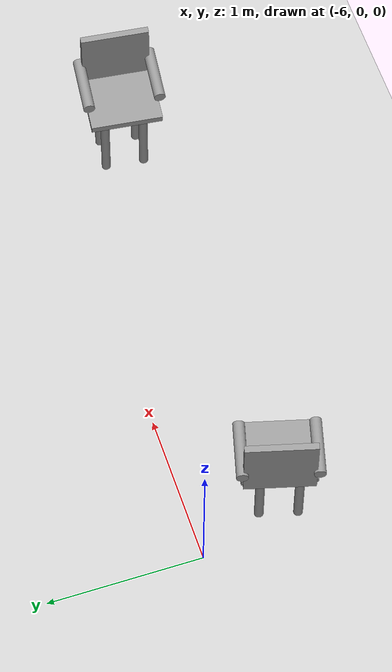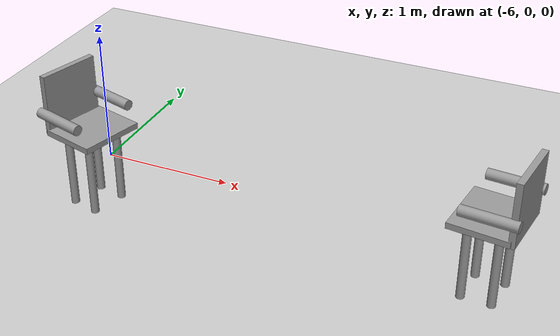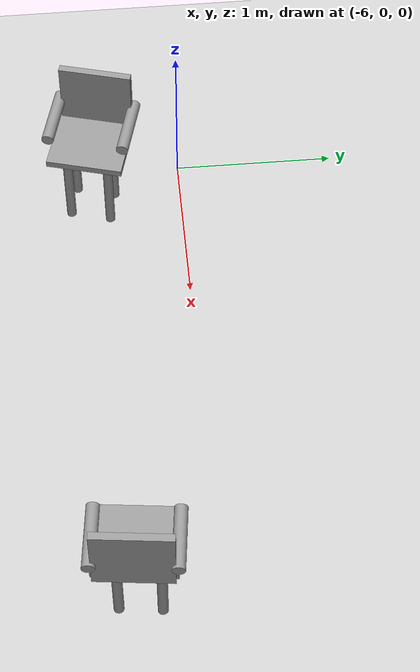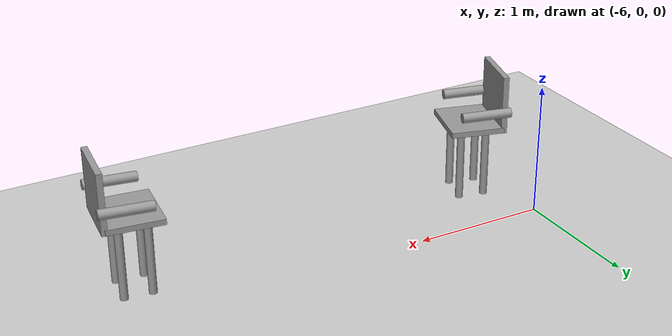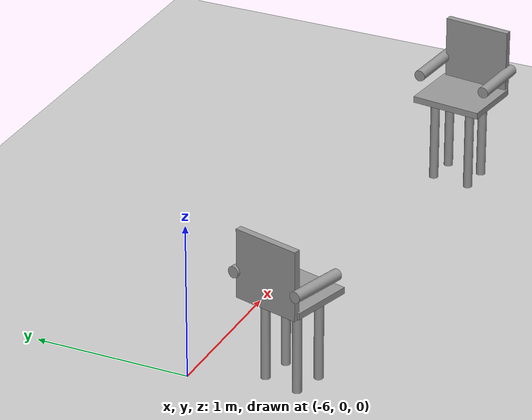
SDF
<sdf version="1.6">
 <world name="default">
  <model name="ground_plane">
   <static>1</static>
   <link name="link">
    <collision name="collision">
     <geometry><plane><normal>0 0 1</normal><size>100 100</size></plane></geometry>
     <surface>
      <contact><collide_bitmask>65535</collide_bitmask></contact>
      <friction><ode><mu>100</mu><mu2>50</mu2></ode></friction>
     </surface>
    </collision>
    <visual name="visual">
     <cast_shadows>0</cast_shadows>
     <geometry><plane><normal>0 0 1</normal><size>100 100</size></plane></geometry>
     <material>
      <script><uri>file://media/materials/scripts/gazebo.material</uri><name>Gazebo/Grey</name></script>
     </material>
    </visual>
   </link>
  </model>
  <model name="chair_clone_4">
   <link name="link_4">
    <inertial>
     <mass>0.00194051</mass>
     <inertia>
      <ixx>5.14044e-05</ixx>
      <ixy>0</ixy>
      <ixz>0</ixz>
      <iyy>5.14044e-05</iyy>
      <iyz>0</iyz>
      <izz>8.34973e-07</izz>
     </inertia>
    </inertial>
    <pose>-0.140129 -0.127166 -0.209129 0 -0 0</pose>
    <visual name="visual">
     <geometry><cylinder><radius>0.0293355</radius><length>0.561516</length></cylinder></geometry>
     <material>
      <lighting>1</lighting>
      <script><uri>file://media/materials/scripts/gazebo.material</uri><name>Gazebo/Grey</name></script>
      <emissive>0 0 0 1</emissive>
     </material>
    </visual>
    <collision name="collision">
     <geometry><cylinder><radius>0.029336</radius><length>0.561516</length></cylinder></geometry>
     <surface>
      <friction>
       <ode><mu>1</mu><mu2>1</mu2><fdir1>0 0 0</fdir1><slip1>0</slip1><slip2>0</slip2></ode>
       <torsional>
        <coefficient>1</coefficient>
        <patch_radius>0</patch_radius>
        <surface_radius>0</surface_radius>
        <use_patch_radius>1</use_patch_radius>
        <ode><slip>0</slip></ode>
       </torsional>
      </friction>
      <bounce><restitution_coefficient>0</restitution_coefficient><threshold>1e+06</threshold></bounce>
      <contact>
       <collide_without_contact>0</collide_without_contact>
       <collide_without_contact_bitmask>1</collide_without_contact_bitmask>
       <collide_bitmask>1</collide_bitmask>
       <ode>
        <soft_cfm>0</soft_cfm>
        <soft_erp>0.2</soft_erp>
        <kp>1e+13</kp>
        <kd>1</kd>
        <max_vel>0.01</max_vel>
        <min_depth>0</min_depth>
       </ode>
       <bullet>
        <split_impulse>1</split_impulse>
        <split_impulse_penetration_threshold>-0.01</split_impulse_penetration_threshold>
        <soft_cfm>0</soft_cfm>
        <soft_erp>0.2</soft_erp>
        <kp>1e+13</kp>
        <kd>1</kd>
       </bullet>
      </contact>
     </surface>
    </collision>
   </link>
   <link name="link_4_clone">
    <inertial>
     <mass>0.00194051</mass>
     <inertia>
      <ixx>5.14044e-05</ixx>
      <ixy>0</ixy>
      <ixz>0</ixz>
      <iyy>5.14044e-05</iyy>
      <iyz>0</iyz>
      <izz>8.34973e-07</izz>
     </inertia>
    </inertial>
    <pose>-0.139565 0.126187 -0.209129 0 -0 0</pose>
    <visual name="visual">
     <geometry><cylinder><radius>0.0293355</radius><length>0.561516</length></cylinder></geometry>
     <material>
      <lighting>1</lighting>
      <script><uri>file://media/materials/scripts/gazebo.material</uri><name>Gazebo/Grey</name></script>
      <shader type="pixel"/>
      <emissive>0 0 0 1</emissive>
     </material>
    </visual>
    <collision name="collision">
     <geometry><cylinder><radius>0.029336</radius><length>0.561516</length></cylinder></geometry>
     <surface>
      <friction>
       <ode><mu>1</mu><mu2>1</mu2><fdir1>0 0 0</fdir1><slip1>0</slip1><slip2>0</slip2></ode>
       <torsional>
        <coefficient>1</coefficient>
        <patch_radius>0</patch_radius>
        <surface_radius>0</surface_radius>
        <use_patch_radius>1</use_patch_radius>
        <ode><slip>0</slip></ode>
       </torsional>
      </friction>
      <bounce><restitution_coefficient>0</restitution_coefficient><threshold>1e+06</threshold></bounce>
      <contact>
       <collide_without_contact>0</collide_without_contact>
       <collide_without_contact_bitmask>1</collide_without_contact_bitmask>
       <collide_bitmask>1</collide_bitmask>
       <ode>
        <soft_cfm>0</soft_cfm>
        <soft_erp>0.2</soft_erp>
        <kp>1e+13</kp>
        <kd>1</kd>
        <max_vel>0.01</max_vel>
        <min_depth>0</min_depth>
       </ode>
       <bullet>
        <split_impulse>1</split_impulse>
        <split_impulse_penetration_threshold>-0.01</split_impulse_penetration_threshold>
        <soft_cfm>0</soft_cfm>
        <soft_erp>0.2</soft_erp>
        <kp>1e+13</kp>
        <kd>1</kd>
       </bullet>
      </contact>
     </surface>
    </collision>
   </link>
   <link name="link_4_clone_0">
    <inertial>
     <mass>0.00194051</mass>
     <inertia>
      <ixx>5.14044e-05</ixx>
      <ixy>0</ixy>
      <ixz>0</ixz>
      <iyy>5.14044e-05</iyy>
      <iyz>0</iyz>
      <izz>8.34973e-07</izz>
     </inertia>
    </inertial>
    <pose>0.062929 0.13105 -0.209129 0 -0 0</pose>
    <visual name="visual">
     <geometry><cylinder><radius>0.0293355</radius><length>0.561516</length></cylinder></geometry>
     <material>
      <lighting>1</lighting>
      <script><uri>file://media/materials/scripts/gazebo.material</uri><name>Gazebo/Grey</name></script>
      <shader type="pixel"/>
      <emissive>0 0 0 1</emissive>
     </material>
    </visual>
    <collision name="collision">
     <geometry><cylinder><radius>0.029336</radius><length>0.561516</length></cylinder></geometry>
     <surface>
      <friction>
       <ode><mu>1</mu><mu2>1</mu2><fdir1>0 0 0</fdir1><slip1>0</slip1><slip2>0</slip2></ode>
       <torsional>
        <coefficient>1</coefficient>
        <patch_radius>0</patch_radius>
        <surface_radius>0</surface_radius>
        <use_patch_radius>1</use_patch_radius>
        <ode><slip>0</slip></ode>
       </torsional>
      </friction>
      <bounce><restitution_coefficient>0</restitution_coefficient><threshold>1e+06</threshold></bounce>
      <contact>
       <collide_without_contact>0</collide_without_contact>
       <collide_without_contact_bitmask>1</collide_without_contact_bitmask>
       <collide_bitmask>1</collide_bitmask>
       <ode>
        <soft_cfm>0</soft_cfm>
        <soft_erp>0.2</soft_erp>
        <kp>1e+13</kp>
        <kd>1</kd>
        <max_vel>0.01</max_vel>
        <min_depth>0</min_depth>
       </ode>
       <bullet>
        <split_impulse>1</split_impulse>
        <split_impulse_penetration_threshold>-0.01</split_impulse_penetration_threshold>
        <soft_cfm>0</soft_cfm>
        <soft_erp>0.2</soft_erp>
        <kp>1e+13</kp>
        <kd>1</kd>
       </bullet>
      </contact>
     </surface>
    </collision>
   </link>
   <link name="link_4_clone_1">
    <inertial>
     <mass>0.00194051</mass>
     <inertia>
      <ixx>5.14044e-05</ixx>
      <ixy>0</ixy>
      <ixz>0</ixz>
      <iyy>5.14044e-05</iyy>
      <iyz>0</iyz>
      <izz>8.34973e-07</izz>
     </inertia>
    </inertial>
    <pose>0.061641 -0.111934 -0.209129 0 -0 0</pose>
    <visual name="visual">
     <geometry><cylinder><radius>0.0293355</radius><length>0.561516</length></cylinder></geometry>
     <material>
      <lighting>1</lighting>
      <script><uri>file://media/materials/scripts/gazebo.material</uri><name>Gazebo/Grey</name></script>
      <shader type="pixel"/>
      <emissive>0 0 0 1</emissive>
     </material>
    </visual>
    <collision name="collision">
     <geometry><cylinder><radius>0.029336</radius><length>0.561516</length></cylinder></geometry>
     <surface>
      <friction>
       <ode><mu>1</mu><mu2>1</mu2><fdir1>0 0 0</fdir1><slip1>0</slip1><slip2>0</slip2></ode>
       <torsional>
        <coefficient>1</coefficient>
        <patch_radius>0</patch_radius>
        <surface_radius>0</surface_radius>
        <use_patch_radius>1</use_patch_radius>
        <ode><slip>0</slip></ode>
       </torsional>
      </friction>
      <bounce><restitution_coefficient>0</restitution_coefficient><threshold>1e+06</threshold></bounce>
      <contact>
       <collide_without_contact>0</collide_without_contact>
       <collide_without_contact_bitmask>1</collide_without_contact_bitmask>
       <collide_bitmask>1</collide_bitmask>
       <ode>
        <soft_cfm>0</soft_cfm>
        <soft_erp>0.2</soft_erp>
        <kp>1e+13</kp>
        <kd>1</kd>
        <max_vel>0.01</max_vel>
        <min_depth>0</min_depth>
       </ode>
       <bullet>
        <split_impulse>1</split_impulse>
        <split_impulse_penetration_threshold>-0.01</split_impulse_penetration_threshold>
        <soft_cfm>0</soft_cfm>
        <soft_erp>0.2</soft_erp>
        <kp>1e+13</kp>
        <kd>1</kd>
       </bullet>
      </contact>
     </surface>
    </collision>
   </link>
   <link name="link_5">
    <inertial>
     <mass>0.00816884</mass>
     <inertia>
      <ixx>0.00015002</ixx>
      <ixy>0</ixy>
      <ixz>0</ixz>
      <iyy>0.000115328</iyy>
      <iyz>0</iyz>
      <izz>0.000262862</izz>
     </inertia>
    </inertial>
    <pose>-0.041662 -0.005028 0.089077 0 -0 0</pose>
    <visual name="visual">
     <geometry><box><size>0.409378 0.467496 0.042729</size></box></geometry>
     <material>
      <lighting>1</lighting>
      <script><uri>file://media/materials/scripts/gazebo.material</uri><name>Gazebo/Grey</name></script>
      <emissive>0 0 0 1</emissive>
     </material>
    </visual>
    <collision name="collision">
     <geometry><box><size>0.409378 0.467496 0.042729</size></box></geometry>
     <surface>
      <friction>
       <ode><mu>1</mu><mu2>1</mu2><fdir1>0 0 0</fdir1><slip1>0</slip1><slip2>0</slip2></ode>
       <torsional>
        <coefficient>1</coefficient>
        <patch_radius>0</patch_radius>
        <surface_radius>0</surface_radius>
        <use_patch_radius>1</use_patch_radius>
        <ode><slip>0</slip></ode>
       </torsional>
      </friction>
      <bounce><restitution_coefficient>0</restitution_coefficient><threshold>1e+06</threshold></bounce>
      <contact>
       <collide_without_contact>0</collide_without_contact>
       <collide_without_contact_bitmask>1</collide_without_contact_bitmask>
       <collide_bitmask>1</collide_bitmask>
       <ode>
        <soft_cfm>0</soft_cfm>
        <soft_erp>0.2</soft_erp>
        <kp>1e+13</kp>
        <kd>1</kd>
        <max_vel>0.01</max_vel>
        <min_depth>0</min_depth>
       </ode>
       <bullet>
        <split_impulse>1</split_impulse>
        <split_impulse_penetration_threshold>-0.01</split_impulse_penetration_threshold>
        <soft_cfm>0</soft_cfm>
        <soft_erp>0.2</soft_erp>
        <kp>1e+13</kp>
        <kd>1</kd>
       </bullet>
      </contact>
     </surface>
    </collision>
   </link>
   <link name="link_6">
    <inertial>
     <mass>0.00855687</mass>
     <inertia>
      <ixx>0.000285159</ixx>
      <ixy>0</ixy>
      <ixz>0</ixz>
      <iyy>0.000146983</iyy>
      <iyz>0</iyz>
      <izz>0.000140925</izz>
     </inertia>
    </inertial>
    <pose>0.165697 -0.006458 0.287866 0 -0 0</pose>
    <visual name="visual">
     <geometry><box><size>0.0439 0.442383 0.451884</size></box></geometry>
     <material>
      <lighting>1</lighting>
      <script><uri>file://media/materials/scripts/gazebo.material</uri><name>Gazebo/Grey</name></script>
      <emissive>0 0 0 1</emissive>
     </material>
    </visual>
    <collision name="collision">
     <geometry><box><size>0.0439 0.442383 0.451884</size></box></geometry>
     <surface>
      <friction>
       <ode><mu>1</mu><mu2>1</mu2><fdir1>0 0 0</fdir1><slip1>0</slip1><slip2>0</slip2></ode>
       <torsional>
        <coefficient>1</coefficient>
        <patch_radius>0</patch_radius>
        <surface_radius>0</surface_radius>
        <use_patch_radius>1</use_patch_radius>
        <ode><slip>0</slip></ode>
       </torsional>
      </friction>
      <bounce><restitution_coefficient>0</restitution_coefficient><threshold>1e+06</threshold></bounce>
      <contact>
       <collide_without_contact>0</collide_without_contact>
       <collide_without_contact_bitmask>1</collide_without_contact_bitmask>
       <collide_bitmask>1</collide_bitmask>
       <ode>
        <soft_cfm>0</soft_cfm>
        <soft_erp>0.2</soft_erp>
        <kp>1e+13</kp>
        <kd>1</kd>
        <max_vel>0.01</max_vel>
        <min_depth>0</min_depth>
       </ode>
       <bullet>
        <split_impulse>1</split_impulse>
        <split_impulse_penetration_threshold>-0.01</split_impulse_penetration_threshold>
        <soft_cfm>0</soft_cfm>
        <soft_erp>0.2</soft_erp>
        <kp>1e+13</kp>
        <kd>1</kd>
       </bullet>
      </contact>
     </surface>
    </collision>
   </link>
   <link name="link_7">
    <inertial>
     <mass>0.00209129</mass>
     <inertia>
      <ixx>2.57536e-05</ixx>
      <ixy>0</ixy>
      <ixz>0</ixz>
      <iyy>2.57536e-05</iyy>
      <iyz>0</iyz>
      <izz>1.44551e-06</izz>
     </inertia>
    </inertial>
    <pose>0.0147 0.228665 0.230372 0 1.55081 0</pose>
    <visual name="visual">
     <geometry><cylinder><radius>0.0371808</radius><length>0.378984</length></cylinder></geometry>
     <material>
      <lighting>1</lighting>
      <script><uri>file://media/materials/scripts/gazebo.material</uri><name>Gazebo/Grey</name></script>
      <emissive>0 0 0 1</emissive>
     </material>
    </visual>
    <collision name="collision">
     <geometry><cylinder><radius>0.037181</radius><length>0.378984</length></cylinder></geometry>
     <surface>
      <friction>
       <ode><mu>1</mu><mu2>1</mu2><fdir1>0 0 0</fdir1><slip1>0</slip1><slip2>0</slip2></ode>
       <torsional>
        <coefficient>1</coefficient>
        <patch_radius>0</patch_radius>
        <surface_radius>0</surface_radius>
        <use_patch_radius>1</use_patch_radius>
        <ode><slip>0</slip></ode>
       </torsional>
      </friction>
      <bounce><restitution_coefficient>0</restitution_coefficient><threshold>1e+06</threshold></bounce>
      <contact>
       <collide_without_contact>0</collide_without_contact>
       <collide_without_contact_bitmask>1</collide_without_contact_bitmask>
       <collide_bitmask>1</collide_bitmask>
       <ode>
        <soft_cfm>0</soft_cfm>
        <soft_erp>0.2</soft_erp>
        <kp>1e+13</kp>
        <kd>1</kd>
        <max_vel>0.01</max_vel>
        <min_depth>0</min_depth>
       </ode>
       <bullet>
        <split_impulse>1</split_impulse>
        <split_impulse_penetration_threshold>-0.01</split_impulse_penetration_threshold>
        <soft_cfm>0</soft_cfm>
        <soft_erp>0.2</soft_erp>
        <kp>1e+13</kp>
        <kd>1</kd>
       </bullet>
      </contact>
     </surface>
    </collision>
   </link>
   <link name="link_7_clone">
    <inertial>
     <mass>0.00209129</mass>
     <inertia>
      <ixx>2.57536e-05</ixx>
      <ixy>0</ixy>
      <ixz>0</ixz>
      <iyy>2.57536e-05</iyy>
      <iyz>0</iyz>
      <izz>1.44551e-06</izz>
     </inertia>
    </inertial>
    <pose>0.01639 -0.235319 0.229201 0 1.55081 0</pose>
    <visual name="visual">
     <geometry><cylinder><radius>0.0371808</radius><length>0.378984</length></cylinder></geometry>
     <material>
      <lighting>1</lighting>
      <script><uri>file://media/materials/scripts/gazebo.material</uri><name>Gazebo/Grey</name></script>
      <shader type="pixel"/>
      <emissive>0 0 0 1</emissive>
     </material>
    </visual>
    <collision name="collision">
     <geometry><cylinder><radius>0.037181</radius><length>0.378984</length></cylinder></geometry>
     <surface>
      <friction>
       <ode><mu>1</mu><mu2>1</mu2><fdir1>0 0 0</fdir1><slip1>0</slip1><slip2>0</slip2></ode>
       <torsional>
        <coefficient>1</coefficient>
        <patch_radius>0</patch_radius>
        <surface_radius>0</surface_radius>
        <use_patch_radius>1</use_patch_radius>
        <ode><slip>0</slip></ode>
       </torsional>
      </friction>
      <bounce><restitution_coefficient>0</restitution_coefficient><threshold>1e+06</threshold></bounce>
      <contact>
       <collide_without_contact>0</collide_without_contact>
       <collide_without_contact_bitmask>1</collide_without_contact_bitmask>
       <collide_bitmask>1</collide_bitmask>
       <ode>
        <soft_cfm>0</soft_cfm>
        <soft_erp>0.2</soft_erp>
        <kp>1e+13</kp>
        <kd>1</kd>
        <max_vel>0.01</max_vel>
        <min_depth>0</min_depth>
       </ode>
       <bullet>
        <split_impulse>1</split_impulse>
        <split_impulse_penetration_threshold>-0.01</split_impulse_penetration_threshold>
        <soft_cfm>0</soft_cfm>
        <soft_erp>0.2</soft_erp>
        <kp>1e+13</kp>
        <kd>1</kd>
       </bullet>
      </contact>
     </surface>
    </collision>
   </link>
   <joint name="link_5_JOINT_2" type="fixed">
    <parent>link_5</parent>
    <child>link_4_clone_1</child>
    <physics>
     <ode><limit><cfm>0</cfm><erp>0.2</erp></limit><suspension><cfm>0</cfm><erp>0.2</erp></suspension></ode>
    </physics>
   </joint>
   <joint name="link_5_JOINT_3" type="fixed">
    <parent>link_5</parent>
    <child>link_4</child>
    <physics>
     <ode><limit><cfm>0</cfm><erp>0.2</erp></limit><suspension><cfm>0</cfm><erp>0.2</erp></suspension></ode>
    </physics>
   </joint>
   <joint name="link_5_JOINT_4" type="fixed">
    <parent>link_5</parent>
    <child>link_4_clone_0</child>
    <physics>
     <ode><limit><cfm>0</cfm><erp>0.2</erp></limit><suspension><cfm>0</cfm><erp>0.2</erp></suspension></ode>
    </physics>
   </joint>
   <joint name="link_5_JOINT_5" type="fixed">
    <parent>link_5</parent>
    <child>link_4_clone</child>
    <physics>
     <ode><limit><cfm>0</cfm><erp>0.2</erp></limit><suspension><cfm>0</cfm><erp>0.2</erp></suspension></ode>
    </physics>
   </joint>
   <joint name="link_5_JOINT_6" type="fixed">
    <parent>link_5</parent>
    <child>link_6</child>
    <physics>
     <ode><limit><cfm>0</cfm><erp>0.2</erp></limit><suspension><cfm>0</cfm><erp>0.2</erp></suspension></ode>
    </physics>
   </joint>
   <joint name="link_5_JOINT_7" type="fixed">
    <parent>link_5</parent>
    <child>link_7</child>
    <physics>
     <ode><limit><cfm>0</cfm><erp>0.2</erp></limit><suspension><cfm>0</cfm><erp>0.2</erp></suspension></ode>
    </physics>
   </joint>
   <joint name="link_5_JOINT_8" type="fixed">
    <parent>link_5</parent>
    <child>link_7_clone</child>
    <physics>
     <ode><limit><cfm>0</cfm><erp>0.2</erp></limit><suspension><cfm>0</cfm><erp>0.2</erp></suspension></ode>
    </physics>
   </joint>
   <static>0</static>
   <pose>-2.90655 -0.455059 0.489878 -1e-06 3.2e-05 -0.117018</pose>
  </model>
  <model name="chair_clone_0_clone_4">
   <link name="link_4">
    <inertial>
     <mass>0.00194051</mass>
     <inertia>
      <ixx>5.14044e-05</ixx>
      <ixy>0</ixy>
      <ixz>0</ixz>
      <iyy>5.14044e-05</iyy>
      <iyz>0</iyz>
      <izz>8.34973e-07</izz>
     </inertia>
    </inertial>
    <pose>-0.140129 -0.127166 -0.209129 0 -0 0</pose>
    <visual name="visual">
     <geometry><cylinder><radius>0.0293355</radius><length>0.561516</length></cylinder></geometry>
     <material>
      <lighting>1</lighting>
      <script><uri>file://media/materials/scripts/gazebo.material</uri><name>Gazebo/Grey</name></script>
      <emissive>0 0 0 1</emissive>
     </material>
    </visual>
    <collision name="collision">
     <geometry><cylinder><radius>0.029336</radius><length>0.561516</length></cylinder></geometry>
     <surface>
      <friction>
       <ode><mu>1</mu><mu2>1</mu2><fdir1>0 0 0</fdir1><slip1>0</slip1><slip2>0</slip2></ode>
       <torsional>
        <coefficient>1</coefficient>
        <patch_radius>0</patch_radius>
        <surface_radius>0</surface_radius>
        <use_patch_radius>1</use_patch_radius>
        <ode><slip>0</slip></ode>
       </torsional>
      </friction>
      <bounce><restitution_coefficient>0</restitution_coefficient><threshold>1e+06</threshold></bounce>
      <contact>
       <collide_without_contact>0</collide_without_contact>
       <collide_without_contact_bitmask>1</collide_without_contact_bitmask>
       <collide_bitmask>1</collide_bitmask>
       <ode>
        <soft_cfm>0</soft_cfm>
        <soft_erp>0.2</soft_erp>
        <kp>1e+13</kp>
        <kd>1</kd>
        <max_vel>0.01</max_vel>
        <min_depth>0</min_depth>
       </ode>
       <bullet>
        <split_impulse>1</split_impulse>
        <split_impulse_penetration_threshold>-0.01</split_impulse_penetration_threshold>
        <soft_cfm>0</soft_cfm>
        <soft_erp>0.2</soft_erp>
        <kp>1e+13</kp>
        <kd>1</kd>
       </bullet>
      </contact>
     </surface>
    </collision>
   </link>
   <link name="link_4_clone">
    <inertial>
     <mass>0.00194051</mass>
     <inertia>
      <ixx>5.14044e-05</ixx>
      <ixy>0</ixy>
      <ixz>0</ixz>
      <iyy>5.14044e-05</iyy>
      <iyz>0</iyz>
      <izz>8.34973e-07</izz>
     </inertia>
    </inertial>
    <pose>-0.139565 0.126187 -0.209129 0 -0 0</pose>
    <visual name="visual">
     <geometry><cylinder><radius>0.0293355</radius><length>0.561516</length></cylinder></geometry>
     <material>
      <lighting>1</lighting>
      <script><uri>file://media/materials/scripts/gazebo.material</uri><name>Gazebo/Grey</name></script>
      <shader type="pixel"/>
      <emissive>0 0 0 1</emissive>
     </material>
    </visual>
    <collision name="collision">
     <geometry><cylinder><radius>0.029336</radius><length>0.561516</length></cylinder></geometry>
     <surface>
      <friction>
       <ode><mu>1</mu><mu2>1</mu2><fdir1>0 0 0</fdir1><slip1>0</slip1><slip2>0</slip2></ode>
       <torsional>
        <coefficient>1</coefficient>
        <patch_radius>0</patch_radius>
        <surface_radius>0</surface_radius>
        <use_patch_radius>1</use_patch_radius>
        <ode><slip>0</slip></ode>
       </torsional>
      </friction>
      <bounce><restitution_coefficient>0</restitution_coefficient><threshold>1e+06</threshold></bounce>
      <contact>
       <collide_without_contact>0</collide_without_contact>
       <collide_without_contact_bitmask>1</collide_without_contact_bitmask>
       <collide_bitmask>1</collide_bitmask>
       <ode>
        <soft_cfm>0</soft_cfm>
        <soft_erp>0.2</soft_erp>
        <kp>1e+13</kp>
        <kd>1</kd>
        <max_vel>0.01</max_vel>
        <min_depth>0</min_depth>
       </ode>
       <bullet>
        <split_impulse>1</split_impulse>
        <split_impulse_penetration_threshold>-0.01</split_impulse_penetration_threshold>
        <soft_cfm>0</soft_cfm>
        <soft_erp>0.2</soft_erp>
        <kp>1e+13</kp>
        <kd>1</kd>
       </bullet>
      </contact>
     </surface>
    </collision>
   </link>
   <link name="link_4_clone_0">
    <inertial>
     <mass>0.00194051</mass>
     <inertia>
      <ixx>5.14044e-05</ixx>
      <ixy>0</ixy>
      <ixz>0</ixz>
      <iyy>5.14044e-05</iyy>
      <iyz>0</iyz>
      <izz>8.34973e-07</izz>
     </inertia>
    </inertial>
    <pose>0.062929 0.13105 -0.209129 0 -0 0</pose>
    <visual name="visual">
     <geometry><cylinder><radius>0.0293355</radius><length>0.561516</length></cylinder></geometry>
     <material>
      <lighting>1</lighting>
      <script><uri>file://media/materials/scripts/gazebo.material</uri><name>Gazebo/Grey</name></script>
      <shader type="pixel"/>
      <emissive>0 0 0 1</emissive>
     </material>
    </visual>
    <collision name="collision">
     <geometry><cylinder><radius>0.029336</radius><length>0.561516</length></cylinder></geometry>
     <surface>
      <friction>
       <ode><mu>1</mu><mu2>1</mu2><fdir1>0 0 0</fdir1><slip1>0</slip1><slip2>0</slip2></ode>
       <torsional>
        <coefficient>1</coefficient>
        <patch_radius>0</patch_radius>
        <surface_radius>0</surface_radius>
        <use_patch_radius>1</use_patch_radius>
        <ode><slip>0</slip></ode>
       </torsional>
      </friction>
      <bounce><restitution_coefficient>0</restitution_coefficient><threshold>1e+06</threshold></bounce>
      <contact>
       <collide_without_contact>0</collide_without_contact>
       <collide_without_contact_bitmask>1</collide_without_contact_bitmask>
       <collide_bitmask>1</collide_bitmask>
       <ode>
        <soft_cfm>0</soft_cfm>
        <soft_erp>0.2</soft_erp>
        <kp>1e+13</kp>
        <kd>1</kd>
        <max_vel>0.01</max_vel>
        <min_depth>0</min_depth>
       </ode>
       <bullet>
        <split_impulse>1</split_impulse>
        <split_impulse_penetration_threshold>-0.01</split_impulse_penetration_threshold>
        <soft_cfm>0</soft_cfm>
        <soft_erp>0.2</soft_erp>
        <kp>1e+13</kp>
        <kd>1</kd>
       </bullet>
      </contact>
     </surface>
    </collision>
   </link>
   <link name="link_4_clone_1">
    <inertial>
     <mass>0.00194051</mass>
     <inertia>
      <ixx>5.14044e-05</ixx>
      <ixy>0</ixy>
      <ixz>0</ixz>
      <iyy>5.14044e-05</iyy>
      <iyz>0</iyz>
      <izz>8.34973e-07</izz>
     </inertia>
    </inertial>
    <pose>0.061641 -0.111934 -0.209129 0 -0 0</pose>
    <visual name="visual">
     <geometry><cylinder><radius>0.0293355</radius><length>0.561516</length></cylinder></geometry>
     <material>
      <lighting>1</lighting>
      <script><uri>file://media/materials/scripts/gazebo.material</uri><name>Gazebo/Grey</name></script>
      <shader type="pixel"/>
      <emissive>0 0 0 1</emissive>
     </material>
    </visual>
    <collision name="collision">
     <geometry><cylinder><radius>0.029336</radius><length>0.561516</length></cylinder></geometry>
     <surface>
      <friction>
       <ode><mu>1</mu><mu2>1</mu2><fdir1>0 0 0</fdir1><slip1>0</slip1><slip2>0</slip2></ode>
       <torsional>
        <coefficient>1</coefficient>
        <patch_radius>0</patch_radius>
        <surface_radius>0</surface_radius>
        <use_patch_radius>1</use_patch_radius>
        <ode><slip>0</slip></ode>
       </torsional>
      </friction>
      <bounce><restitution_coefficient>0</restitution_coefficient><threshold>1e+06</threshold></bounce>
      <contact>
       <collide_without_contact>0</collide_without_contact>
       <collide_without_contact_bitmask>1</collide_without_contact_bitmask>
       <collide_bitmask>1</collide_bitmask>
       <ode>
        <soft_cfm>0</soft_cfm>
        <soft_erp>0.2</soft_erp>
        <kp>1e+13</kp>
        <kd>1</kd>
        <max_vel>0.01</max_vel>
        <min_depth>0</min_depth>
       </ode>
       <bullet>
        <split_impulse>1</split_impulse>
        <split_impulse_penetration_threshold>-0.01</split_impulse_penetration_threshold>
        <soft_cfm>0</soft_cfm>
        <soft_erp>0.2</soft_erp>
        <kp>1e+13</kp>
        <kd>1</kd>
       </bullet>
      </contact>
     </surface>
    </collision>
   </link>
   <link name="link_5">
    <inertial>
     <mass>0.00816884</mass>
     <inertia>
      <ixx>0.00015002</ixx>
      <ixy>0</ixy>
      <ixz>0</ixz>
      <iyy>0.000115328</iyy>
      <iyz>0</iyz>
      <izz>0.000262862</izz>
     </inertia>
    </inertial>
    <pose>-0.041662 -0.005028 0.089077 0 -0 0</pose>
    <visual name="visual">
     <geometry><box><size>0.409378 0.467496 0.042729</size></box></geometry>
     <material>
      <lighting>1</lighting>
      <script><uri>file://media/materials/scripts/gazebo.material</uri><name>Gazebo/Grey</name></script>
      <emissive>0 0 0 1</emissive>
     </material>
    </visual>
    <collision name="collision">
     <geometry><box><size>0.409378 0.467496 0.042729</size></box></geometry>
     <surface>
      <friction>
       <ode><mu>1</mu><mu2>1</mu2><fdir1>0 0 0</fdir1><slip1>0</slip1><slip2>0</slip2></ode>
       <torsional>
        <coefficient>1</coefficient>
        <patch_radius>0</patch_radius>
        <surface_radius>0</surface_radius>
        <use_patch_radius>1</use_patch_radius>
        <ode><slip>0</slip></ode>
       </torsional>
      </friction>
      <bounce><restitution_coefficient>0</restitution_coefficient><threshold>1e+06</threshold></bounce>
      <contact>
       <collide_without_contact>0</collide_without_contact>
       <collide_without_contact_bitmask>1</collide_without_contact_bitmask>
       <collide_bitmask>1</collide_bitmask>
       <ode>
        <soft_cfm>0</soft_cfm>
        <soft_erp>0.2</soft_erp>
        <kp>1e+13</kp>
        <kd>1</kd>
        <max_vel>0.01</max_vel>
        <min_depth>0</min_depth>
       </ode>
       <bullet>
        <split_impulse>1</split_impulse>
        <split_impulse_penetration_threshold>-0.01</split_impulse_penetration_threshold>
        <soft_cfm>0</soft_cfm>
        <soft_erp>0.2</soft_erp>
        <kp>1e+13</kp>
        <kd>1</kd>
       </bullet>
      </contact>
     </surface>
    </collision>
   </link>
   <link name="link_6">
    <inertial>
     <mass>0.00855687</mass>
     <inertia>
      <ixx>0.000285159</ixx>
      <ixy>0</ixy>
      <ixz>0</ixz>
      <iyy>0.000146983</iyy>
      <iyz>0</iyz>
      <izz>0.000140925</izz>
     </inertia>
    </inertial>
    <pose>0.165697 -0.006458 0.287866 0 -0 0</pose>
    <visual name="visual">
     <geometry><box><size>0.0439 0.442383 0.451884</size></box></geometry>
     <material>
      <lighting>1</lighting>
      <script><uri>file://media/materials/scripts/gazebo.material</uri><name>Gazebo/Grey</name></script>
      <emissive>0 0 0 1</emissive>
     </material>
    </visual>
    <collision name="collision">
     <geometry><box><size>0.0439 0.442383 0.451884</size></box></geometry>
     <surface>
      <friction>
       <ode><mu>1</mu><mu2>1</mu2><fdir1>0 0 0</fdir1><slip1>0</slip1><slip2>0</slip2></ode>
       <torsional>
        <coefficient>1</coefficient>
        <patch_radius>0</patch_radius>
        <surface_radius>0</surface_radius>
        <use_patch_radius>1</use_patch_radius>
        <ode><slip>0</slip></ode>
       </torsional>
      </friction>
      <bounce><restitution_coefficient>0</restitution_coefficient><threshold>1e+06</threshold></bounce>
      <contact>
       <collide_without_contact>0</collide_without_contact>
       <collide_without_contact_bitmask>1</collide_without_contact_bitmask>
       <collide_bitmask>1</collide_bitmask>
       <ode>
        <soft_cfm>0</soft_cfm>
        <soft_erp>0.2</soft_erp>
        <kp>1e+13</kp>
        <kd>1</kd>
        <max_vel>0.01</max_vel>
        <min_depth>0</min_depth>
       </ode>
       <bullet>
        <split_impulse>1</split_impulse>
        <split_impulse_penetration_threshold>-0.01</split_impulse_penetration_threshold>
        <soft_cfm>0</soft_cfm>
        <soft_erp>0.2</soft_erp>
        <kp>1e+13</kp>
        <kd>1</kd>
       </bullet>
      </contact>
     </surface>
    </collision>
   </link>
   <link name="link_7">
    <inertial>
     <mass>0.00209129</mass>
     <inertia>
      <ixx>2.57536e-05</ixx>
      <ixy>0</ixy>
      <ixz>0</ixz>
      <iyy>2.57536e-05</iyy>
      <iyz>0</iyz>
      <izz>1.44551e-06</izz>
     </inertia>
    </inertial>
    <pose>0.0147 0.228665 0.230372 0 1.55081 0</pose>
    <visual name="visual">
     <geometry><cylinder><radius>0.0371808</radius><length>0.378984</length></cylinder></geometry>
     <material>
      <lighting>1</lighting>
      <script><uri>file://media/materials/scripts/gazebo.material</uri><name>Gazebo/Grey</name></script>
      <emissive>0 0 0 1</emissive>
     </material>
    </visual>
    <collision name="collision">
     <geometry><cylinder><radius>0.037181</radius><length>0.378984</length></cylinder></geometry>
     <surface>
      <friction>
       <ode><mu>1</mu><mu2>1</mu2><fdir1>0 0 0</fdir1><slip1>0</slip1><slip2>0</slip2></ode>
       <torsional>
        <coefficient>1</coefficient>
        <patch_radius>0</patch_radius>
        <surface_radius>0</surface_radius>
        <use_patch_radius>1</use_patch_radius>
        <ode><slip>0</slip></ode>
       </torsional>
      </friction>
      <bounce><restitution_coefficient>0</restitution_coefficient><threshold>1e+06</threshold></bounce>
      <contact>
       <collide_without_contact>0</collide_without_contact>
       <collide_without_contact_bitmask>1</collide_without_contact_bitmask>
       <collide_bitmask>1</collide_bitmask>
       <ode>
        <soft_cfm>0</soft_cfm>
        <soft_erp>0.2</soft_erp>
        <kp>1e+13</kp>
        <kd>1</kd>
        <max_vel>0.01</max_vel>
        <min_depth>0</min_depth>
       </ode>
       <bullet>
        <split_impulse>1</split_impulse>
        <split_impulse_penetration_threshold>-0.01</split_impulse_penetration_threshold>
        <soft_cfm>0</soft_cfm>
        <soft_erp>0.2</soft_erp>
        <kp>1e+13</kp>
        <kd>1</kd>
       </bullet>
      </contact>
     </surface>
    </collision>
   </link>
   <link name="link_7_clone">
    <inertial>
     <mass>0.00209129</mass>
     <inertia>
      <ixx>2.57536e-05</ixx>
      <ixy>0</ixy>
      <ixz>0</ixz>
      <iyy>2.57536e-05</iyy>
      <iyz>0</iyz>
      <izz>1.44551e-06</izz>
     </inertia>
    </inertial>
    <pose>0.01639 -0.235319 0.229201 0 1.55081 0</pose>
    <visual name="visual">
     <geometry><cylinder><radius>0.0371808</radius><length>0.378984</length></cylinder></geometry>
     <material>
      <lighting>1</lighting>
      <script><uri>file://media/materials/scripts/gazebo.material</uri><name>Gazebo/Grey</name></script>
      <shader type="pixel"/>
      <emissive>0 0 0 1</emissive>
     </material>
    </visual>
    <collision name="collision">
     <geometry><cylinder><radius>0.037181</radius><length>0.378984</length></cylinder></geometry>
     <surface>
      <friction>
       <ode><mu>1</mu><mu2>1</mu2><fdir1>0 0 0</fdir1><slip1>0</slip1><slip2>0</slip2></ode>
       <torsional>
        <coefficient>1</coefficient>
        <patch_radius>0</patch_radius>
        <surface_radius>0</surface_radius>
        <use_patch_radius>1</use_patch_radius>
        <ode><slip>0</slip></ode>
       </torsional>
      </friction>
      <bounce><restitution_coefficient>0</restitution_coefficient><threshold>1e+06</threshold></bounce>
      <contact>
       <collide_without_contact>0</collide_without_contact>
       <collide_without_contact_bitmask>1</collide_without_contact_bitmask>
       <collide_bitmask>1</collide_bitmask>
       <ode>
        <soft_cfm>0</soft_cfm>
        <soft_erp>0.2</soft_erp>
        <kp>1e+13</kp>
        <kd>1</kd>
        <max_vel>0.01</max_vel>
        <min_depth>0</min_depth>
       </ode>
       <bullet>
        <split_impulse>1</split_impulse>
        <split_impulse_penetration_threshold>-0.01</split_impulse_penetration_threshold>
        <soft_cfm>0</soft_cfm>
        <soft_erp>0.2</soft_erp>
        <kp>1e+13</kp>
        <kd>1</kd>
       </bullet>
      </contact>
     </surface>
    </collision>
   </link>
   <joint name="link_5_JOINT_2" type="fixed">
    <parent>link_5</parent>
    <child>link_4_clone_1</child>
    <physics>
     <ode><limit><cfm>0</cfm><erp>0.2</erp></limit><suspension><cfm>0</cfm><erp>0.2</erp></suspension></ode>
    </physics>
   </joint>
   <joint name="link_5_JOINT_3" type="fixed">
    <parent>link_5</parent>
    <child>link_4</child>
    <physics>
     <ode><limit><cfm>0</cfm><erp>0.2</erp></limit><suspension><cfm>0</cfm><erp>0.2</erp></suspension></ode>
    </physics>
   </joint>
   <joint name="link_5_JOINT_4" type="fixed">
    <parent>link_5</parent>
    <child>link_4_clone_0</child>
    <physics>
     <ode><limit><cfm>0</cfm><erp>0.2</erp></limit><suspension><cfm>0</cfm><erp>0.2</erp></suspension></ode>
    </physics>
   </joint>
   <joint name="link_5_JOINT_5" type="fixed">
    <parent>link_5</parent>
    <child>link_4_clone</child>
    <physics>
     <ode><limit><cfm>0</cfm><erp>0.2</erp></limit><suspension><cfm>0</cfm><erp>0.2</erp></suspension></ode>
    </physics>
   </joint>
   <joint name="link_5_JOINT_6" type="fixed">
    <parent>link_5</parent>
    <child>link_6</child>
    <physics>
     <ode><limit><cfm>0</cfm><erp>0.2</erp></limit><suspension><cfm>0</cfm><erp>0.2</erp></suspension></ode>
    </physics>
   </joint>
   <joint name="link_5_JOINT_7" type="fixed">
    <parent>link_5</parent>
    <child>link_7</child>
    <physics>
     <ode><limit><cfm>0</cfm><erp>0.2</erp></limit><suspension><cfm>0</cfm><erp>0.2</erp></suspension></ode>
    </physics>
   </joint>
   <joint name="link_5_JOINT_8" type="fixed">
    <parent>link_5</parent>
    <child>link_7_clone</child>
    <physics>
     <ode><limit><cfm>0</cfm><erp>0.2</erp></limit><suspension><cfm>0</cfm><erp>0.2</erp></suspension></ode>
    </physics>
   </joint>
   <static>0</static>
   <pose>-5.78531 -0.546023 0.489879 4e-06 3.1e-05 2.87476</pose>
  </model>
 </world>
</sdf>
